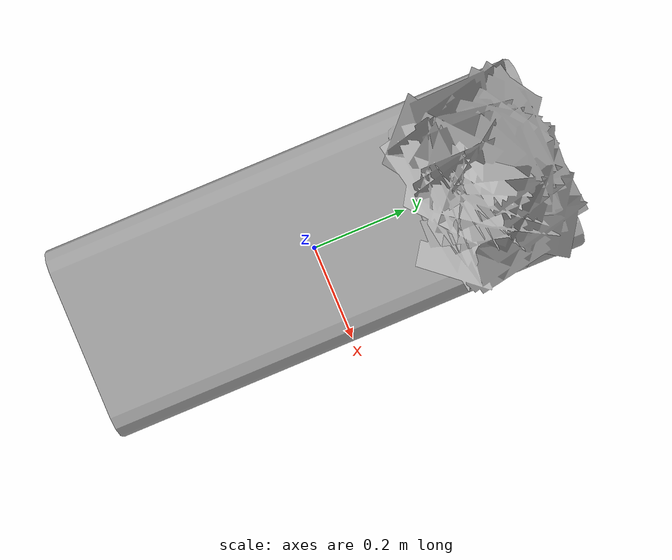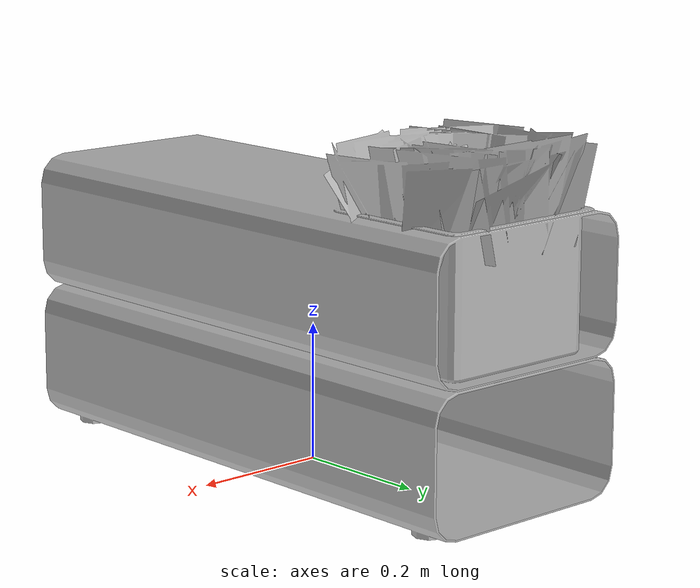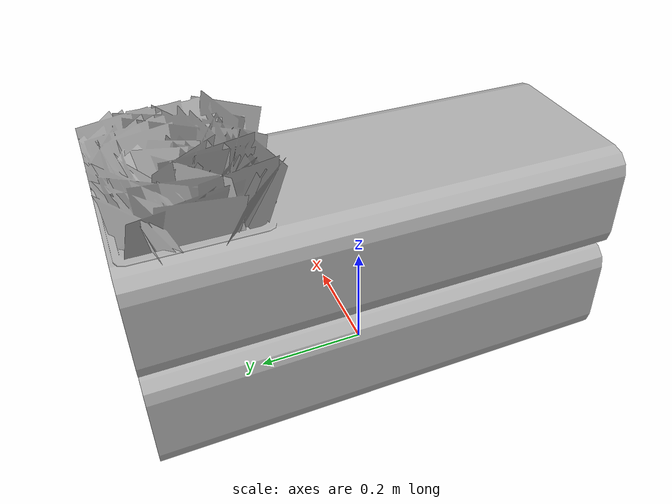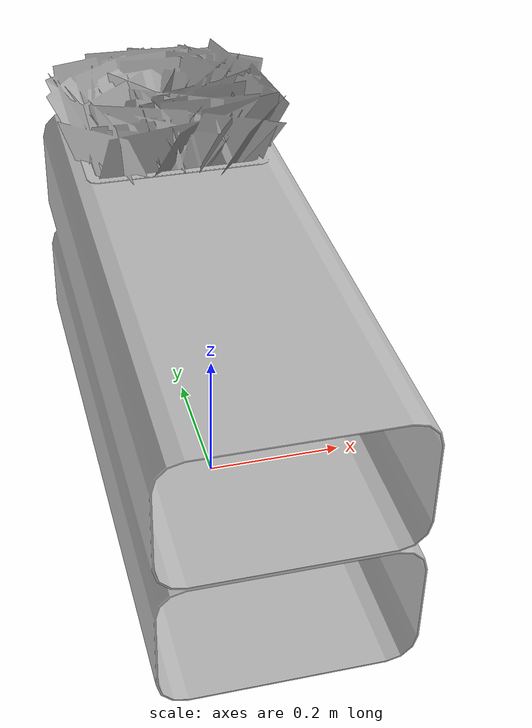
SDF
<?xml version='1.0'?>
<sdf version='1.4'>
  <model name='s__1989'>
    <pose>0 0 0 0 0 0</pose>
    <static>true</static>
    <link name='link'>
      <collision name='collision'>
        <pose>0 0 0 0 0 0</pose>
        <geometry>
          <box>
            <size>0.34 0.84 2</size>
          </box>
        </geometry>
      </collision>
      <visual name='visual'>
        <pose>0 0 0 0 0 0</pose>
        <geometry>
          <mesh><uri>model://s__1989/s__1989.dae</uri></mesh>
        </geometry>
      </visual>
    </link>
  </model>
</sdf>
